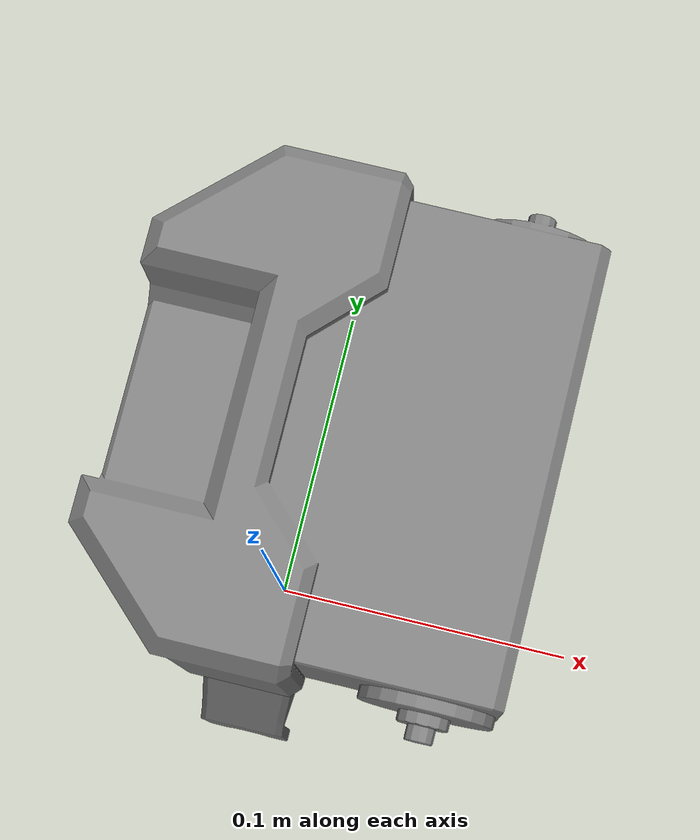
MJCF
<mujoco model="aloha_upper_arm_with_joint_dynamics">
    <include file="aloha_upper_arm.xml" />

    <custom>
        <numeric name="shoulder\joint\damping\0\range\y" size='2' data='0.0 20.0' />
        <numeric name="shoulder\joint\armature\0\range\y" size='2' data='0.0 0.5' />
        <numeric name="shoulder\joint\frictionloss\0\range\y" size='2' data='0.0 2.0' />
    </custom>
</mujoco>

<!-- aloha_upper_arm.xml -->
<mujoco model="aloha_upper_arm">
    <compiler angle="radian" meshdir="assets" autolimits="true" />

    <asset>
        <mesh file="custom_vx300s_3_upper_arm_part1.stl" />
        <mesh file="custom_vx300s_3_upper_arm_part2.stl" />
    </asset>

    <default>
        <default class="vx300s">
            <joint axis="0 1 0" actuatorfrcrange="-35 35" actuatorgravcomp="true" />
            <!-- group 4 means not a tracking site -->
            <site group="4" />
            <default class="shoulder">
                <joint range="-1.85005 1.25664"
                    actuatorfrcrange="-144 144" />
                <position ctrlrange="-1.85005 1.25664" kp="265" forcerange="-144 144" />
            </default>
            <default class="visual">
                <geom type="mesh" mass="0" group="2" contype="0" conaffinity="0" />
            </default>
            <default class="collision">
                <geom group="3" type="mesh" condim="6" friction="1 5e-3 5e-4" solref=".01 1" />
            </default>
        </default>
    </default>

    <worldbody>
        <body name="upper_arm_link" childclass="vx300s">
            <joint name="shoulder" class="shoulder" armature="0.395" frictionloss="2.0"
                damping="20.0" />
            <geom pos="0.0005 0 0.045" rgba='1 0 0 1' type="box" size="0.017 0.05 0.015"
                class="collision" mass="0.1" name="upper_arm_link_motor_housing" />
            <geom quat="1 0 0 1" class="visual" mesh="custom_vx300s_3_upper_arm_part1"
            />
            <geom type="box" size="0.01 0.02 0.103" pos="0 0 0.167" density="100"
                rgba="0.2 0.8 0.4 1" name="extension" class="collision" />
            <geom type="box" size="0.01 0.02 0.103" pos="0 0 0.167" density="100"
                name="extension_visual" class="visual" />
            <geom pos="0.033 0 0.3" rgba='1 0 0 1' type="box"
                size="0.04 0.05 0.015"
                class="collision" mass="0" name="upper_forearm_link_motor_housing" />
            <geom quat="1 0 0 1" class="visual" mesh="custom_vx300s_3_upper_arm_part2"
                name="upper_arm_connector" pos="0 0 0" />
            <site name="upper_forearm_mount" pos="0.05955 0 0.3" />
        </body>
    </worldbody>

    <custom>
        <numeric name="extension\geom\size\2\range\x+y" size='2' data='-0.05 0.20' />
        <text name="link_extension_size"
            data="extension\geom\size\2\range\x+y;extension_visual\geom\size\2\range\x+y" />

        <text name="shift_pos_with_extension_upper_arm"
            data="extension\geom\size\2\range\x+y;extension\geom\pos\2\range\x+y;extension_visual\geom\pos\2\range\x+y;upper_arm_connector\geom\pos\2\range\(y-x)*2;upper_forearm_mount\site\pos\2\range\0.3+y*2;upper_forearm_link_motor_housing\geom\pos\2\range\0.3+y*2" />

        <tuple name="actuators">
            <element objtype="joint" objname="shoulder" />
        </tuple>
    </custom>
</mujoco>
